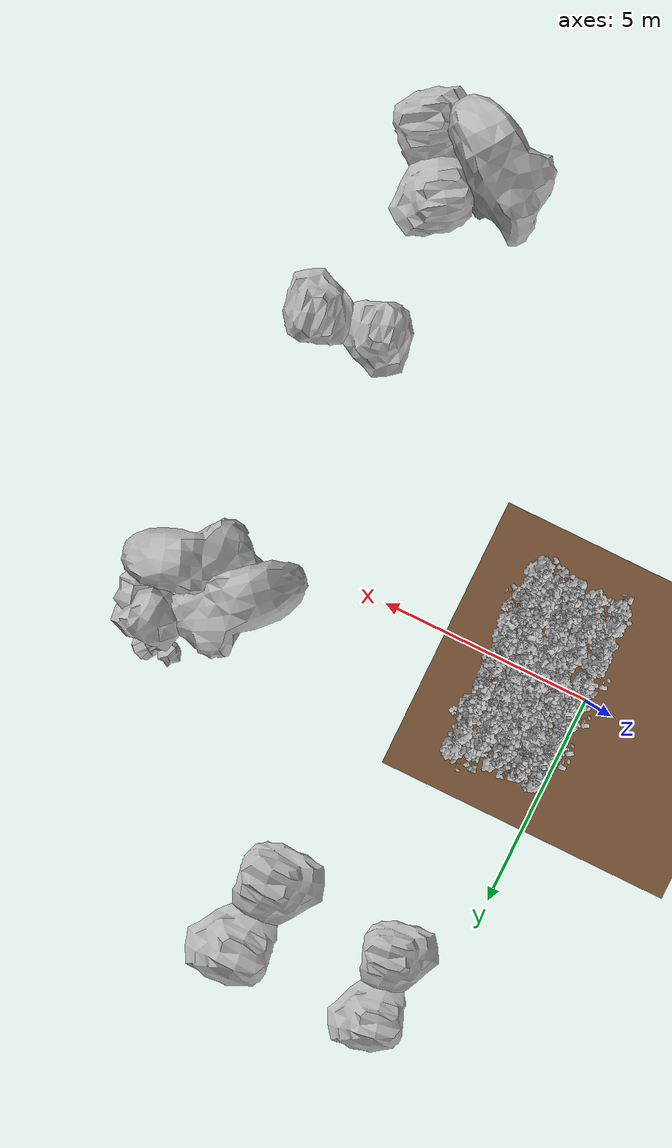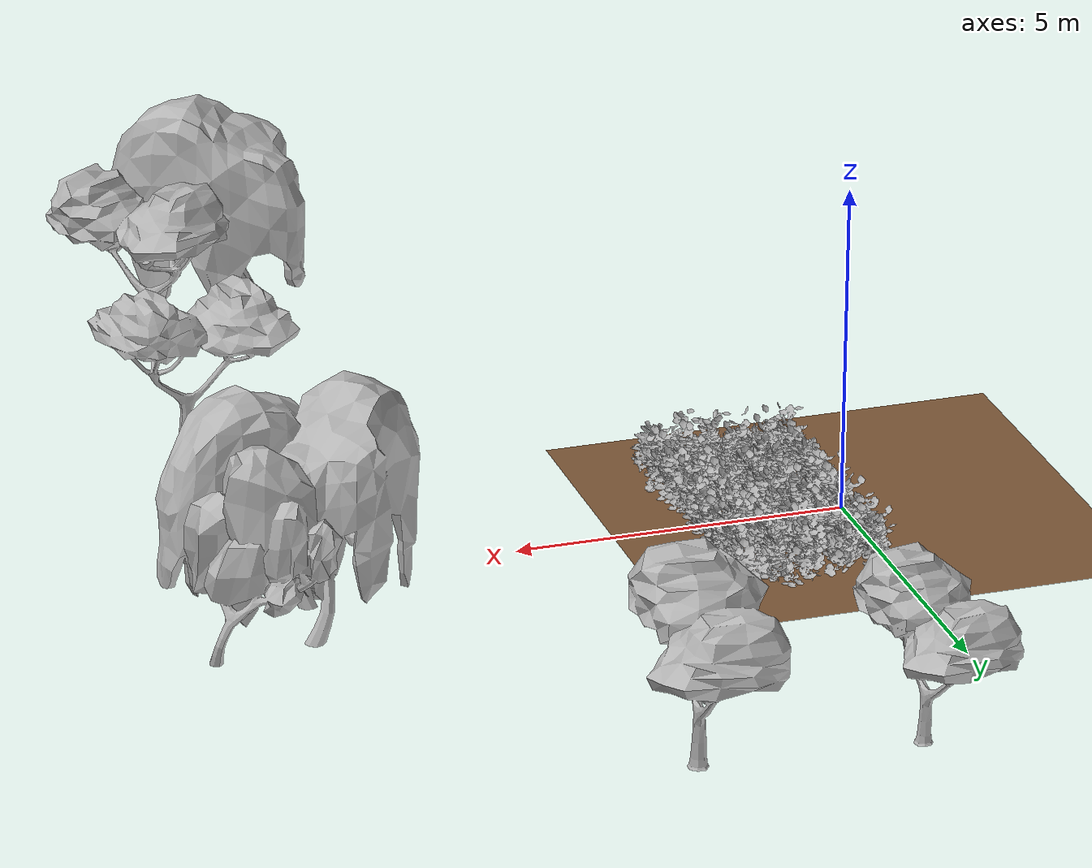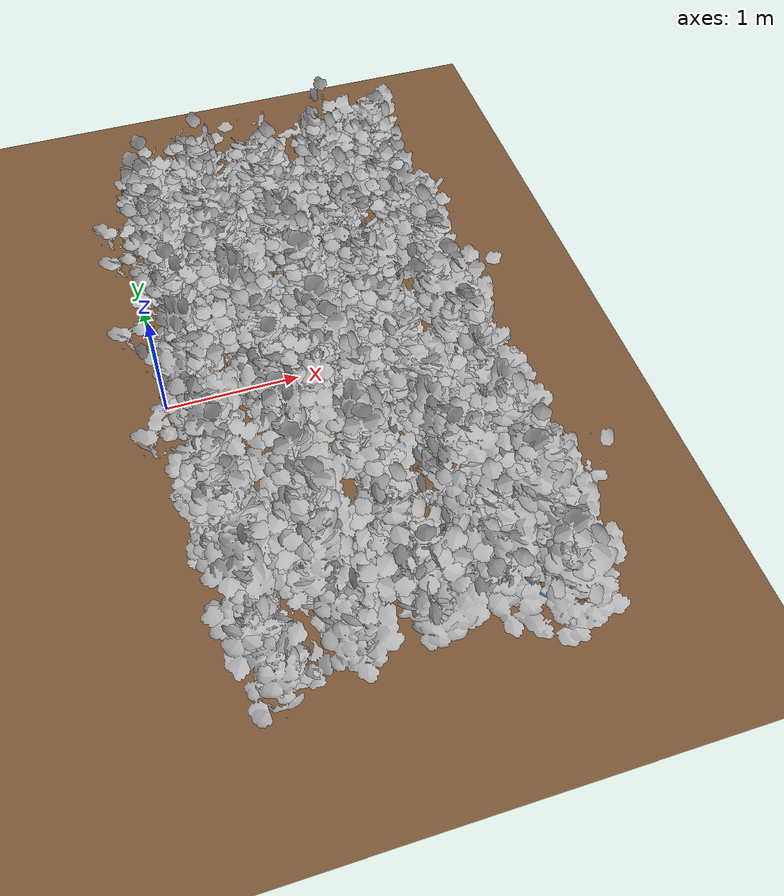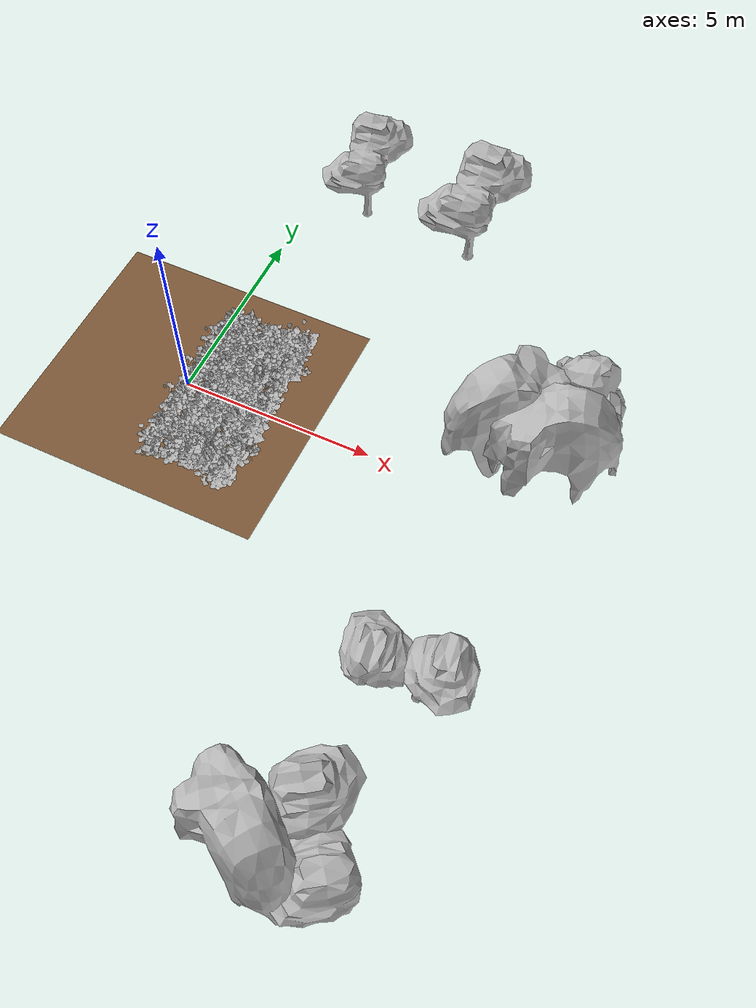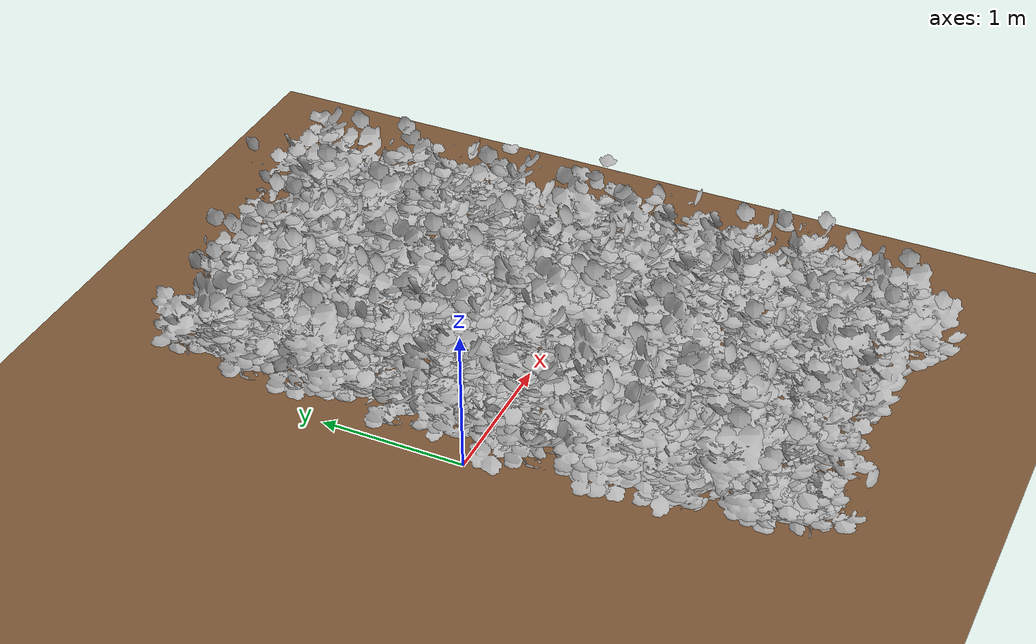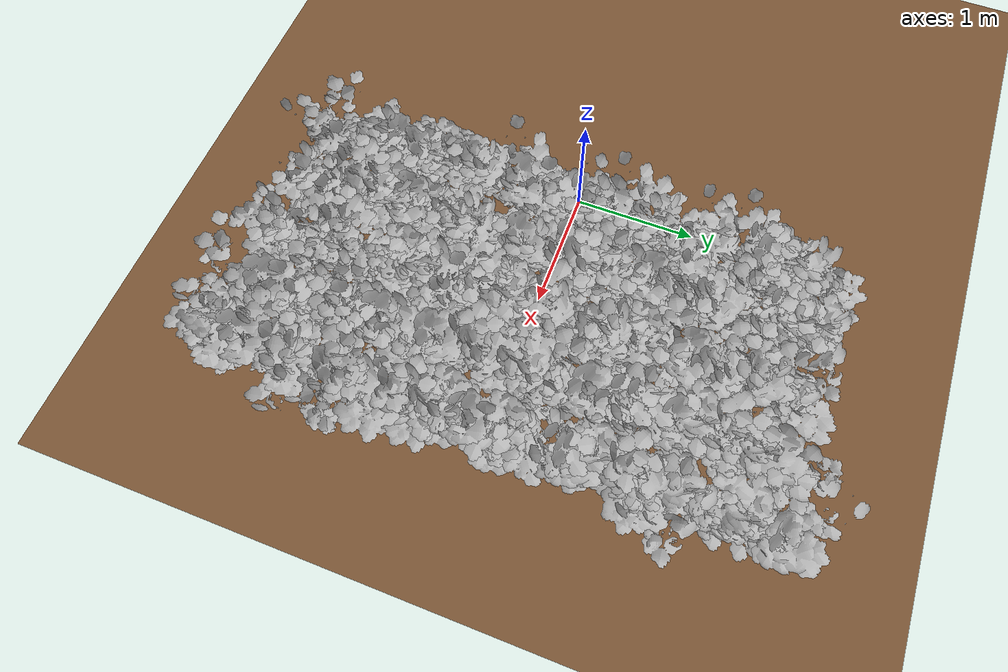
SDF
<sdf version="1.9">
 <world name="soybean_farm">
  <model name="soil_patch">
   <static>true</static>
   <pose>0 0 0.002 0 0 0</pose>
   <link name="link">
    <visual name="visual">
     <geometry><plane><normal>0 0 1</normal><size>7.00 6.50</size></plane></geometry>
     <material>
      <ambient>0.22 0.15 0.09 1</ambient>
      <diffuse>0.50 0.35 0.22 1</diffuse>
      <specular>0.05 0.05 0.05 1</specular>
      <pbr>
       <metal>
        <albedo_map>ground/soil_color_1k.jpg</albedo_map>
        <roughness>0.95</roughness>
        <metalness>0.0</metalness>
       </metal>
      </pbr>
     </material>
    </visual>
   </link>
  </model>
  <model name="tree_00">
   <static>true</static>
   <pose>1.51 7.22 0 1.5708 0 3.29</pose>
   <link name="base_link">
    <visual name="visual">
     <geometry>
      <mesh><uri>models/tree_common/meshes/tree_common.obj</uri><scale>1.06 1.06 1.06</scale></mesh>
     </geometry>
    </visual>
   </link>
  </model>
  <model name="tree_02">
   <static>true</static>
   <pose>8.62 -5.05 0 1.5708 0 4.88</pose>
   <link name="base_link">
    <visual name="visual">
     <geometry>
      <mesh><uri>models/tree_common/meshes/tree_common.obj</uri><scale>1.04 1.04 1.04</scale></mesh>
     </geometry>
    </visual>
   </link>
  </model>
  <model name="tree_04">
   <static>true</static>
   <pose>4.64 6.96 0 1.5708 0 3.10</pose>
   <link name="base_link">
    <visual name="visual">
     <geometry>
      <mesh><uri>models/tree_common/meshes/tree_common.obj</uri><scale>1.20 1.20 1.20</scale></mesh>
     </geometry>
    </visual>
   </link>
  </model>
  <model name="tree_05">
   <static>true</static>
   <pose>6.49 -8.97 0 1.5708 0 4.04</pose>
   <link name="base_link">
    <visual name="visual">
     <geometry>
      <mesh><uri>models/tree_willow/meshes/tree_willow.obj</uri><scale>1.29 1.29 1.29</scale></mesh>
     </geometry>
    </visual>
   </link>
  </model>
  <model name="tree_06">
   <static>true</static>
   <pose>9.96 2.10 0 1.5708 0 0.95</pose>
   <link name="base_link">
    <visual name="visual">
     <geometry>
      <mesh><uri>models/tree_birch/meshes/tree_birch.obj</uri><scale>0.93 0.93 0.93</scale></mesh>
     </geometry>
    </visual>
   </link>
  </model>
  <model name="tree_09">
   <static>true</static>
   <pose>8.12 -8.83 0 1.5708 0 0.57</pose>
   <link name="base_link">
    <visual name="visual">
     <geometry>
      <mesh><uri>models/tree_common/meshes/tree_common.obj</uri><scale>1.14 1.14 1.14</scale></mesh>
     </geometry>
    </visual>
   </link>
  </model>
  <model name="tree_10">
   <static>true</static>
   <pose>8.35 0.90 0 1.5708 0 4.98</pose>
   <link name="base_link">
    <visual name="visual">
     <geometry>
      <mesh><uri>models/tree_willow/meshes/tree_willow.obj</uri><scale>1.26 1.26 1.26</scale></mesh>
     </geometry>
    </visual>
   </link>
  </model>
  <model name="tree_14">
   <static>true</static>
   <pose>8.60 1.81 0 1.5708 0 2.29</pose>
   <link name="base_link">
    <visual name="visual">
     <geometry>
      <mesh><uri>models/tree_willow/meshes/tree_willow.obj</uri><scale>1.27 1.27 1.27</scale></mesh>
     </geometry>
    </visual>
   </link>
  </model>
  <model name="soybean_150">
   <static>true</static>
   <pose>0.263 -2.176 0 0 0 4.764</pose>
   <link name="base_link">
    <visual name="visual">
     <geometry><mesh><uri>models/soybean_plant/meshes/soybean_30d.obj</uri></mesh></geometry>
    </visual>
   </link>
  </model>
  <model name="soybean_151">
   <static>true</static>
   <pose>0.259 -2.026 0 0 0 4.982</pose>
   <link name="base_link">
    <visual name="visual">
     <geometry><mesh><uri>models/soybean_plant/meshes/soybean_50d.obj</uri></mesh></geometry>
    </visual>
   </link>
  </model>
  <model name="soybean_152">
   <static>true</static>
   <pose>0.233 -1.863 0 0 0 1.924</pose>
   <link name="base_link">
    <visual name="visual">
     <geometry><mesh><uri>models/soybean_plant/meshes/soybean_30d.obj</uri></mesh></geometry>
    </visual>
   </link>
  </model>
  <model name="soybean_153">
   <static>true</static>
   <pose>0.248 -1.723 0 0 0 2.674</pose>
   <link name="base_link">
    <visual name="visual">
     <geometry><mesh><uri>models/soybean_plant/meshes/soybean_40d.obj</uri></mesh></geometry>
    </visual>
   </link>
  </model>
  <model name="soybean_154">
   <static>true</static>
   <pose>0.240 -1.563 0 0 0 1.702</pose>
   <link name="base_link">
    <visual name="visual">
     <geometry><mesh><uri>models/soybean_plant/meshes/soybean_50d.obj</uri></mesh></geometry>
    </visual>
   </link>
  </model>
  <model name="soybean_155">
   <static>true</static>
   <pose>0.227 -1.443 0 0 0 0.751</pose>
   <link name="base_link">
    <visual name="visual">
     <geometry><mesh><uri>models/soybean_plant/meshes/soybean_40d.obj</uri></mesh></geometry>
    </visual>
   </link>
  </model>
  <model name="soybean_156">
   <static>true</static>
   <pose>0.266 -1.294 0 0 0 1.360</pose>
   <link name="base_link">
    <visual name="visual">
     <geometry><mesh><uri>models/soybean_plant/meshes/soybean_40d.obj</uri></mesh></geometry>
    </visual>
   </link>
  </model>
  <model name="soybean_157">
   <static>true</static>
   <pose>0.263 -1.096 0 0 0 3.296</pose>
   <link name="base_link">
    <visual name="visual">
     <geometry><mesh><uri>models/soybean_plant/meshes/soybean_40d.obj</uri></mesh></geometry>
    </visual>
   </link>
  </model>
  <model name="soybean_158">
   <static>true</static>
   <pose>0.226 -0.993 0 0 0 1.429</pose>
   <link name="base_link">
    <visual name="visual">
     <geometry><mesh><uri>models/soybean_plant/meshes/soybean_40d.obj</uri></mesh></geometry>
    </visual>
   </link>
  </model>
  <model name="soybean_159">
   <static>true</static>
   <pose>0.221 -0.823 0 0 0 1.724</pose>
   <link name="base_link">
    <visual name="visual">
     <geometry><mesh><uri>models/soybean_plant/meshes/soybean_40d.obj</uri></mesh></geometry>
    </visual>
   </link>
  </model>
  <model name="soybean_160">
   <static>true</static>
   <pose>0.253 -0.663 0 0 0 0.793</pose>
   <link name="base_link">
    <visual name="visual">
     <geometry><mesh><uri>models/soybean_plant/meshes/soybean_50d.obj</uri></mesh></geometry>
    </visual>
   </link>
  </model>
  <model name="soybean_161">
   <static>true</static>
   <pose>0.249 -0.503 0 0 0 3.607</pose>
   <link name="base_link">
    <visual name="visual">
     <geometry><mesh><uri>models/soybean_plant/meshes/soybean_50d.obj</uri></mesh></geometry>
    </visual>
   </link>
  </model>
  <model name="soybean_162">
   <static>true</static>
   <pose>0.246 -0.394 0 0 0 0.323</pose>
   <link name="base_link">
    <visual name="visual">
     <geometry><mesh><uri>models/soybean_plant/meshes/soybean_40d.obj</uri></mesh></geometry>
    </visual>
   </link>
  </model>
  <model name="soybean_163">
   <static>true</static>
   <pose>0.249 -0.206 0 0 0 2.518</pose>
   <link name="base_link">
    <visual name="visual">
     <geometry><mesh><uri>models/soybean_plant/meshes/soybean_50d.obj</uri></mesh></geometry>
    </visual>
   </link>
  </model>
  <model name="soybean_164">
   <static>true</static>
   <pose>0.258 -0.102 0 0 0 0.937</pose>
   <link name="base_link">
    <visual name="visual">
     <geometry><mesh><uri>models/soybean_plant/meshes/soybean_30d.obj</uri></mesh></geometry>
    </visual>
   </link>
  </model>
  <model name="soybean_165">
   <static>true</static>
   <pose>0.238 0.105 0 0 0 0.744</pose>
   <link name="base_link">
    <visual name="visual">
     <geometry><mesh><uri>models/soybean_plant/meshes/soybean_40d.obj</uri></mesh></geometry>
    </visual>
   </link>
  </model>
  <model name="soybean_166">
   <static>true</static>
   <pose>0.256 0.242 0 0 0 1.418</pose>
   <link name="base_link">
    <visual name="visual">
     <geometry><mesh><uri>models/soybean_plant/meshes/soybean_50d.obj</uri></mesh></geometry>
    </visual>
   </link>
  </model>
  <model name="soybean_167">
   <static>true</static>
   <pose>0.247 0.372 0 0 0 5.405</pose>
   <link name="base_link">
    <visual name="visual">
     <geometry><mesh><uri>models/soybean_plant/meshes/soybean_40d.obj</uri></mesh></geometry>
    </visual>
   </link>
  </model>
  <model name="soybean_168">
   <static>true</static>
   <pose>0.238 0.532 0 0 0 3.830</pose>
   <link name="base_link">
    <visual name="visual">
     <geometry><mesh><uri>models/soybean_plant/meshes/soybean_50d.obj</uri></mesh></geometry>
    </visual>
   </link>
  </model>
  <model name="soybean_169">
   <static>true</static>
   <pose>0.277 0.657 0 0 0 1.326</pose>
   <link name="base_link">
    <visual name="visual">
     <geometry><mesh><uri>models/soybean_plant/meshes/soybean_50d.obj</uri></mesh></geometry>
    </visual>
   </link>
  </model>
  <model name="soybean_170">
   <static>true</static>
   <pose>0.229 0.805 0 0 0 0.472</pose>
   <link name="base_link">
    <visual name="visual">
     <geometry><mesh><uri>models/soybean_plant/meshes/soybean_50d.obj</uri></mesh></geometry>
    </visual>
   </link>
  </model>
  <model name="soybean_171">
   <static>true</static>
   <pose>0.247 0.981 0 0 0 1.830</pose>
   <link name="base_link">
    <visual name="visual">
     <geometry><mesh><uri>models/soybean_plant/meshes/soybean_30d.obj</uri></mesh></geometry>
    </visual>
   </link>
  </model>
  <model name="soybean_172">
   <static>true</static>
   <pose>0.262 1.137 0 0 0 2.853</pose>
   <link name="base_link">
    <visual name="visual">
     <geometry><mesh><uri>models/soybean_plant/meshes/soybean_40d.obj</uri></mesh></geometry>
    </visual>
   </link>
  </model>
  <model name="soybean_173">
   <static>true</static>
   <pose>0.275 1.292 0 0 0 3.927</pose>
   <link name="base_link">
    <visual name="visual">
     <geometry><mesh><uri>models/soybean_plant/meshes/soybean_50d.obj</uri></mesh></geometry>
    </visual>
   </link>
  </model>
  <model name="soybean_174">
   <static>true</static>
   <pose>0.276 1.421 0 0 0 3.422</pose>
   <link name="base_link">
    <visual name="visual">
     <geometry><mesh><uri>models/soybean_plant/meshes/soybean_50d.obj</uri></mesh></geometry>
    </visual>
   </link>
  </model>
  <model name="soybean_175">
   <static>true</static>
   <pose>0.275 1.595 0 0 0 0.449</pose>
   <link name="base_link">
    <visual name="visual">
     <geometry><mesh><uri>models/soybean_plant/meshes/soybean_40d.obj</uri></mesh></geometry>
    </visual>
   </link>
  </model>
  <model name="soybean_176">
   <static>true</static>
   <pose>0.238 1.740 0 0 0 3.576</pose>
   <link name="base_link">
    <visual name="visual">
     <geometry><mesh><uri>models/soybean_plant/meshes/soybean_40d.obj</uri></mesh></geometry>
    </visual>
   </link>
  </model>
  <model name="soybean_177">
   <static>true</static>
   <pose>0.227 1.886 0 0 0 4.397</pose>
   <link name="base_link">
    <visual name="visual">
     <geometry><mesh><uri>models/soybean_plant/meshes/soybean_40d.obj</uri></mesh></geometry>
    </visual>
   </link>
  </model>
  <model name="soybean_178">
   <static>true</static>
   <pose>0.250 2.025 0 0 0 0.505</pose>
   <link name="base_link">
    <visual name="visual">
     <geometry><mesh><uri>models/soybean_plant/meshes/soybean_50d.obj</uri></mesh></geometry>
    </visual>
   </link>
  </model>
  <model name="soybean_179">
   <static>true</static>
   <pose>0.246 2.164 0 0 0 1.573</pose>
   <link name="base_link">
    <visual name="visual">
     <geometry><mesh><uri>models/soybean_plant/meshes/soybean_30d.obj</uri></mesh></geometry>
    </visual>
   </link>
  </model>
  <model name="soybean_180">
   <static>true</static>
   <pose>0.778 -2.155 0 0 0 3.614</pose>
   <link name="base_link">
    <visual name="visual">
     <geometry><mesh><uri>models/soybean_plant/meshes/soybean_30d.obj</uri></mesh></geometry>
    </visual>
   </link>
  </model>
  <model name="soybean_181">
   <static>true</static>
   <pose>0.780 -2.015 0 0 0 1.693</pose>
   <link name="base_link">
    <visual name="visual">
     <geometry><mesh><uri>models/soybean_plant/meshes/soybean_50d.obj</uri></mesh></geometry>
    </visual>
   </link>
  </model>
  <model name="soybean_182">
   <static>true</static>
   <pose>0.765 -1.877 0 0 0 4.094</pose>
   <link name="base_link">
    <visual name="visual">
     <geometry><mesh><uri>models/soybean_plant/meshes/soybean_30d.obj</uri></mesh></geometry>
    </visual>
   </link>
  </model>
  <model name="soybean_183">
   <static>true</static>
   <pose>0.731 -1.720 0 0 0 3.988</pose>
   <link name="base_link">
    <visual name="visual">
     <geometry><mesh><uri>models/soybean_plant/meshes/soybean_50d.obj</uri></mesh></geometry>
    </visual>
   </link>
  </model>
  <model name="soybean_184">
   <static>true</static>
   <pose>0.725 -1.584 0 0 0 2.094</pose>
   <link name="base_link">
    <visual name="visual">
     <geometry><mesh><uri>models/soybean_plant/meshes/soybean_40d.obj</uri></mesh></geometry>
    </visual>
   </link>
  </model>
  <model name="soybean_185">
   <static>true</static>
   <pose>0.771 -1.435 0 0 0 4.358</pose>
   <link name="base_link">
    <visual name="visual">
     <geometry><mesh><uri>models/soybean_plant/meshes/soybean_50d.obj</uri></mesh></geometry>
    </visual>
   </link>
  </model>
  <model name="soybean_186">
   <static>true</static>
   <pose>0.777 -1.256 0 0 0 3.456</pose>
   <link name="base_link">
    <visual name="visual">
     <geometry><mesh><uri>models/soybean_plant/meshes/soybean_40d.obj</uri></mesh></geometry>
    </visual>
   </link>
  </model>
  <model name="soybean_187">
   <static>true</static>
   <pose>0.739 -1.136 0 0 0 6.096</pose>
   <link name="base_link">
    <visual name="visual">
     <geometry><mesh><uri>models/soybean_plant/meshes/soybean_40d.obj</uri></mesh></geometry>
    </visual>
   </link>
  </model>
  <model name="soybean_188">
   <static>true</static>
   <pose>0.751 -0.946 0 0 0 4.132</pose>
   <link name="base_link">
    <visual name="visual">
     <geometry><mesh><uri>models/soybean_plant/meshes/soybean_40d.obj</uri></mesh></geometry>
    </visual>
   </link>
  </model>
  <model name="soybean_189">
   <static>true</static>
   <pose>0.745 -0.844 0 0 0 2.273</pose>
   <link name="base_link">
    <visual name="visual">
     <geometry><mesh><uri>models/soybean_plant/meshes/soybean_40d.obj</uri></mesh></geometry>
    </visual>
   </link>
  </model>
  <model name="soybean_190">
   <static>true</static>
   <pose>0.758 -0.659 0 0 0 1.279</pose>
   <link name="base_link">
    <visual name="visual">
     <geometry><mesh><uri>models/soybean_plant/meshes/soybean_50d.obj</uri></mesh></geometry>
    </visual>
   </link>
  </model>
  <model name="soybean_191">
   <static>true</static>
   <pose>0.776 -0.529 0 0 0 4.387</pose>
   <link name="base_link">
    <visual name="visual">
     <geometry><mesh><uri>models/soybean_plant/meshes/soybean_40d.obj</uri></mesh></geometry>
    </visual>
   </link>
  </model>
  <model name="soybean_192">
   <static>true</static>
   <pose>0.778 -0.368 0 0 0 1.504</pose>
   <link name="base_link">
    <visual name="visual">
     <geometry><mesh><uri>models/soybean_plant/meshes/soybean_30d.obj</uri></mesh></geometry>
    </visual>
   </link>
  </model>
  <model name="soybean_193">
   <static>true</static>
   <pose>0.753 -0.222 0 0 0 0.586</pose>
   <link name="base_link">
    <visual name="visual">
     <geometry><mesh><uri>models/soybean_plant/meshes/soybean_40d.obj</uri></mesh></geometry>
    </visual>
   </link>
  </model>
  <model name="soybean_194">
   <static>true</static>
   <pose>0.775 -0.077 0 0 0 0.738</pose>
   <link name="base_link">
    <visual name="visual">
     <geometry><mesh><uri>models/soybean_plant/meshes/soybean_50d.obj</uri></mesh></geometry>
    </visual>
   </link>
  </model>
  <model name="soybean_195">
   <static>true</static>
   <pose>0.750 0.088 0 0 0 3.197</pose>
   <link name="base_link">
    <visual name="visual">
     <geometry><mesh><uri>models/soybean_plant/meshes/soybean_50d.obj</uri></mesh></geometry>
    </visual>
   </link>
  </model>
  <model name="soybean_196">
   <static>true</static>
   <pose>0.770 0.254 0 0 0 1.531</pose>
   <link name="base_link">
    <visual name="visual">
     <geometry><mesh><uri>models/soybean_plant/meshes/soybean_40d.obj</uri></mesh></geometry>
    </visual>
   </link>
  </model>
  <model name="soybean_197">
   <static>true</static>
   <pose>0.743 0.400 0 0 0 3.193</pose>
   <link name="base_link">
    <visual name="visual">
     <geometry><mesh><uri>models/soybean_plant/meshes/soybean_40d.obj</uri></mesh></geometry>
    </visual>
   </link>
  </model>
  <model name="soybean_198">
   <static>true</static>
   <pose>0.772 0.512 0 0 0 4.964</pose>
   <link name="base_link">
    <visual name="visual">
     <geometry><mesh><uri>models/soybean_plant/meshes/soybean_50d.obj</uri></mesh></geometry>
    </visual>
   </link>
  </model>
  <model name="soybean_199">
   <static>true</static>
   <pose>0.776 0.675 0 0 0 5.156</pose>
   <link name="base_link">
    <visual name="visual">
     <geometry><mesh><uri>models/soybean_plant/meshes/soybean_40d.obj</uri></mesh></geometry>
    </visual>
   </link>
  </model>
  <model name="soybean_200">
   <static>true</static>
   <pose>0.738 0.830 0 0 0 6.276</pose>
   <link name="base_link">
    <visual name="visual">
     <geometry><mesh><uri>models/soybean_plant/meshes/soybean_40d.obj</uri></mesh></geometry>
    </visual>
   </link>
  </model>
  <model name="soybean_201">
   <static>true</static>
   <pose>0.729 0.977 0 0 0 2.168</pose>
   <link name="base_link">
    <visual name="visual">
     <geometry><mesh><uri>models/soybean_plant/meshes/soybean_40d.obj</uri></mesh></geometry>
    </visual>
   </link>
  </model>
  <model name="soybean_202">
   <static>true</static>
   <pose>0.753 1.122 0 0 0 2.022</pose>
   <link name="base_link">
    <visual name="visual">
     <geometry><mesh><uri>models/soybean_plant/meshes/soybean_40d.obj</uri></mesh></geometry>
    </visual>
   </link>
  </model>
  <model name="soybean_203">
   <static>true</static>
   <pose>0.762 1.279 0 0 0 1.468</pose>
   <link name="base_link">
    <visual name="visual">
     <geometry><mesh><uri>models/soybean_plant/meshes/soybean_40d.obj</uri></mesh></geometry>
    </visual>
   </link>
  </model>
  <model name="soybean_204">
   <static>true</static>
   <pose>0.723 1.440 0 0 0 4.431</pose>
   <link name="base_link">
    <visual name="visual">
     <geometry><mesh><uri>models/soybean_plant/meshes/soybean_50d.obj</uri></mesh></geometry>
    </visual>
   </link>
  </model>
  <model name="soybean_205">
   <static>true</static>
   <pose>0.743 1.585 0 0 0 5.157</pose>
   <link name="base_link">
    <visual name="visual">
     <geometry><mesh><uri>models/soybean_plant/meshes/soybean_50d.obj</uri></mesh></geometry>
    </visual>
   </link>
  </model>
  <model name="soybean_206">
   <static>true</static>
   <pose>0.750 1.697 0 0 0 3.156</pose>
   <link name="base_link">
    <visual name="visual">
     <geometry><mesh><uri>models/soybean_plant/meshes/soybean_50d.obj</uri></mesh></geometry>
    </visual>
   </link>
  </model>
  <model name="soybean_207">
   <static>true</static>
   <pose>0.772 1.897 0 0 0 2.767</pose>
   <link name="base_link">
    <visual name="visual">
     <geometry><mesh><uri>models/soybean_plant/meshes/soybean_40d.obj</uri></mesh></geometry>
    </visual>
   </link>
  </model>
  <model name="soybean_208">
   <static>true</static>
   <pose>0.747 2.038 0 0 0 2.576</pose>
   <link name="base_link">
    <visual name="visual">
     <geometry><mesh><uri>models/soybean_plant/meshes/soybean_40d.obj</uri></mesh></geometry>
    </visual>
   </link>
  </model>
  <model name="soybean_209">
   <static>true</static>
   <pose>0.729 2.173 0 0 0 6.090</pose>
   <link name="base_link">
    <visual name="visual">
     <geometry><mesh><uri>models/soybean_plant/meshes/soybean_50d.obj</uri></mesh></geometry>
    </visual>
   </link>
  </model>
  <model name="soybean_210">
   <static>true</static>
   <pose>1.262 -2.166 0 0 0 5.352</pose>
   <link name="base_link">
    <visual name="visual">
     <geometry><mesh><uri>models/soybean_plant/meshes/soybean_40d.obj</uri></mesh></geometry>
    </visual>
   </link>
  </model>
  <model name="soybean_211">
   <static>true</static>
   <pose>1.272 -2.032 0 0 0 1.990</pose>
   <link name="base_link">
    <visual name="visual">
     <geometry><mesh><uri>models/soybean_plant/meshes/soybean_50d.obj</uri></mesh></geometry>
    </visual>
   </link>
  </model>
  <model name="soybean_212">
   <static>true</static>
   <pose>1.266 -1.853 0 0 0 0.226</pose>
   <link name="base_link">
    <visual name="visual">
     <geometry><mesh><uri>models/soybean_plant/meshes/soybean_50d.obj</uri></mesh></geometry>
    </visual>
   </link>
  </model>
  <model name="soybean_213">
   <static>true</static>
   <pose>1.258 -1.700 0 0 0 6.267</pose>
   <link name="base_link">
    <visual name="visual">
     <geometry><mesh><uri>models/soybean_plant/meshes/soybean_30d.obj</uri></mesh></geometry>
    </visual>
   </link>
  </model>
  <model name="soybean_214">
   <static>true</static>
   <pose>1.246 -1.599 0 0 0 3.982</pose>
   <link name="base_link">
    <visual name="visual">
     <geometry><mesh><uri>models/soybean_plant/meshes/soybean_50d.obj</uri></mesh></geometry>
    </visual>
   </link>
  </model>
  <model name="soybean_215">
   <static>true</static>
   <pose>1.247 -1.413 0 0 0 5.676</pose>
   <link name="base_link">
    <visual name="visual">
     <geometry><mesh><uri>models/soybean_plant/meshes/soybean_50d.obj</uri></mesh></geometry>
    </visual>
   </link>
  </model>
  <model name="soybean_216">
   <static>true</static>
   <pose>1.268 -1.287 0 0 0 2.355</pose>
   <link name="base_link">
    <visual name="visual">
     <geometry><mesh><uri>models/soybean_plant/meshes/soybean_30d.obj</uri></mesh></geometry>
    </visual>
   </link>
  </model>
  <model name="soybean_217">
   <static>true</static>
   <pose>1.252 -1.121 0 0 0 4.980</pose>
   <link name="base_link">
    <visual name="visual">
     <geometry><mesh><uri>models/soybean_plant/meshes/soybean_30d.obj</uri></mesh></geometry>
    </visual>
   </link>
  </model>
  <model name="soybean_218">
   <static>true</static>
   <pose>1.225 -0.953 0 0 0 3.894</pose>
   <link name="base_link">
    <visual name="visual">
     <geometry><mesh><uri>models/soybean_plant/meshes/soybean_40d.obj</uri></mesh></geometry>
    </visual>
   </link>
  </model>
  <model name="soybean_219">
   <static>true</static>
   <pose>1.275 -0.846 0 0 0 2.897</pose>
   <link name="base_link">
    <visual name="visual">
     <geometry><mesh><uri>models/soybean_plant/meshes/soybean_40d.obj</uri></mesh></geometry>
    </visual>
   </link>
  </model>
  <model name="soybean_220">
   <static>true</static>
   <pose>1.235 -0.704 0 0 0 5.056</pose>
   <link name="base_link">
    <visual name="visual">
     <geometry><mesh><uri>models/soybean_plant/meshes/soybean_40d.obj</uri></mesh></geometry>
    </visual>
   </link>
  </model>
  <model name="soybean_221">
   <static>true</static>
   <pose>1.261 -0.546 0 0 0 2.775</pose>
   <link name="base_link">
    <visual name="visual">
     <geometry><mesh><uri>models/soybean_plant/meshes/soybean_50d.obj</uri></mesh></geometry>
    </visual>
   </link>
  </model>
  <model name="soybean_222">
   <static>true</static>
   <pose>1.255 -0.367 0 0 0 2.666</pose>
   <link name="base_link">
    <visual name="visual">
     <geometry><mesh><uri>models/soybean_plant/meshes/soybean_40d.obj</uri></mesh></geometry>
    </visual>
   </link>
  </model>
  <model name="soybean_223">
   <static>true</static>
   <pose>1.271 -0.243 0 0 0 2.417</pose>
   <link name="base_link">
    <visual name="visual">
     <geometry><mesh><uri>models/soybean_plant/meshes/soybean_40d.obj</uri></mesh></geometry>
    </visual>
   </link>
  </model>
  <model name="soybean_224">
   <static>true</static>
   <pose>1.234 -0.071 0 0 0 3.612</pose>
   <link name="base_link">
    <visual name="visual">
     <geometry><mesh><uri>models/soybean_plant/meshes/soybean_40d.obj</uri></mesh></geometry>
    </visual>
   </link>
  </model>
  <model name="soybean_225">
   <static>true</static>
   <pose>1.238 0.104 0 0 0 4.136</pose>
   <link name="base_link">
    <visual name="visual">
     <geometry><mesh><uri>models/soybean_plant/meshes/soybean_50d.obj</uri></mesh></geometry>
    </visual>
   </link>
  </model>
  <model name="soybean_226">
   <static>true</static>
   <pose>1.254 0.236 0 0 0 4.679</pose>
   <link name="base_link">
    <visual name="visual">
     <geometry><mesh><uri>models/soybean_plant/meshes/soybean_40d.obj</uri></mesh></geometry>
    </visual>
   </link>
  </model>
  <model name="soybean_227">
   <static>true</static>
   <pose>1.256 0.375 0 0 0 5.681</pose>
   <link name="base_link">
    <visual name="visual">
     <geometry><mesh><uri>models/soybean_plant/meshes/soybean_30d.obj</uri></mesh></geometry>
    </visual>
   </link>
  </model>
  <model name="soybean_228">
   <static>true</static>
   <pose>1.268 0.531 0 0 0 2.214</pose>
   <link name="base_link">
    <visual name="visual">
     <geometry><mesh><uri>models/soybean_plant/meshes/soybean_40d.obj</uri></mesh></geometry>
    </visual>
   </link>
  </model>
  <model name="soybean_229">
   <static>true</static>
   <pose>1.257 0.686 0 0 0 4.530</pose>
   <link name="base_link">
    <visual name="visual">
     <geometry><mesh><uri>models/soybean_plant/meshes/soybean_40d.obj</uri></mesh></geometry>
    </visual>
   </link>
  </model>
  <model name="soybean_230">
   <static>true</static>
   <pose>1.270 0.833 0 0 0 5.676</pose>
   <link name="base_link">
    <visual name="visual">
     <geometry><mesh><uri>models/soybean_plant/meshes/soybean_50d.obj</uri></mesh></geometry>
    </visual>
   </link>
  </model>
  <model name="soybean_231">
   <static>true</static>
   <pose>1.239 0.971 0 0 0 3.642</pose>
   <link name="base_link">
    <visual name="visual">
     <geometry><mesh><uri>models/soybean_plant/meshes/soybean_40d.obj</uri></mesh></geometry>
    </visual>
   </link>
  </model>
  <model name="soybean_232">
   <static>true</static>
   <pose>1.225 1.113 0 0 0 4.697</pose>
   <link name="base_link">
    <visual name="visual">
     <geometry><mesh><uri>models/soybean_plant/meshes/soybean_50d.obj</uri></mesh></geometry>
    </visual>
   </link>
  </model>
  <model name="soybean_233">
   <static>true</static>
   <pose>1.228 1.277 0 0 0 6.104</pose>
   <link name="base_link">
    <visual name="visual">
     <geometry><mesh><uri>models/soybean_plant/meshes/soybean_40d.obj</uri></mesh></geometry>
    </visual>
   </link>
  </model>
  <model name="soybean_234">
   <static>true</static>
   <pose>1.275 1.445 0 0 0 1.615</pose>
   <link name="base_link">
    <visual name="visual">
     <geometry><mesh><uri>models/soybean_plant/meshes/soybean_40d.obj</uri></mesh></geometry>
    </visual>
   </link>
  </model>
  <model name="soybean_235">
   <static>true</static>
   <pose>1.249 1.593 0 0 0 4.691</pose>
   <link name="base_link">
    <visual name="visual">
     <geometry><mesh><uri>models/soybean_plant/meshes/soybean_50d.obj</uri></mesh></geometry>
    </visual>
   </link>
  </model>
  <model name="soybean_236">
   <static>true</static>
   <pose>1.227 1.753 0 0 0 0.884</pose>
   <link name="base_link">
    <visual name="visual">
     <geometry><mesh><uri>models/soybean_plant/meshes/soybean_40d.obj</uri></mesh></geometry>
    </visual>
   </link>
  </model>
  <model name="soybean_237">
   <static>true</static>
   <pose>1.272 1.888 0 0 0 6.157</pose>
   <link name="base_link">
    <visual name="visual">
     <geometry><mesh><uri>models/soybean_plant/meshes/soybean_50d.obj</uri></mesh></geometry>
    </visual>
   </link>
  </model>
  <model name="soybean_238">
   <static>true</static>
   <pose>1.268 2.017 0 0 0 4.968</pose>
   <link name="base_link">
    <visual name="visual">
     <geometry><mesh><uri>models/soybean_plant/meshes/soybean_50d.obj</uri></mesh></geometry>
    </visual>
   </link>
  </model>
  <model name="soybean_239">
   <static>true</static>
   <pose>1.252 2.172 0 0 0 4.228</pose>
   <link name="base_link">
    <visual name="visual">
     <geometry><mesh><uri>models/soybean_plant/meshes/soybean_30d.obj</uri></mesh></geometry>
    </visual>
   </link>
  </model>
  <model name="soybean_240">
   <static>true</static>
   <pose>1.755 -2.156 0 0 0 5.908</pose>
   <link name="base_link">
    <visual name="visual">
     <geometry><mesh><uri>models/soybean_plant/meshes/soybean_50d.obj</uri></mesh></geometry>
    </visual>
   </link>
  </model>
  <model name="soybean_241">
   <static>true</static>
   <pose>1.734 -2.053 0 0 0 5.556</pose>
   <link name="base_link">
    <visual name="visual">
     <geometry><mesh><uri>models/soybean_plant/meshes/soybean_30d.obj</uri></mesh></geometry>
    </visual>
   </link>
  </model>
  <model name="soybean_242">
   <static>true</static>
   <pose>1.775 -1.892 0 0 0 0.397</pose>
   <link name="base_link">
    <visual name="visual">
     <geometry><mesh><uri>models/soybean_plant/meshes/soybean_40d.obj</uri></mesh></geometry>
    </visual>
   </link>
  </model>
  <model name="soybean_243">
   <static>true</static>
   <pose>1.775 -1.737 0 0 0 2.565</pose>
   <link name="base_link">
    <visual name="visual">
     <geometry><mesh><uri>models/soybean_plant/meshes/soybean_50d.obj</uri></mesh></geometry>
    </visual>
   </link>
  </model>
  <model name="soybean_244">
   <static>true</static>
   <pose>1.777 -1.587 0 0 0 3.095</pose>
   <link name="base_link">
    <visual name="visual">
     <geometry><mesh><uri>models/soybean_plant/meshes/soybean_30d.obj</uri></mesh></geometry>
    </visual>
   </link>
  </model>
  <model name="soybean_245">
   <static>true</static>
   <pose>1.773 -1.447 0 0 0 2.850</pose>
   <link name="base_link">
    <visual name="visual">
     <geometry><mesh><uri>models/soybean_plant/meshes/soybean_30d.obj</uri></mesh></geometry>
    </visual>
   </link>
  </model>
  <model name="soybean_246">
   <static>true</static>
   <pose>1.765 -1.248 0 0 0 2.633</pose>
   <link name="base_link">
    <visual name="visual">
     <geometry><mesh><uri>models/soybean_plant/meshes/soybean_50d.obj</uri></mesh></geometry>
    </visual>
   </link>
  </model>
  <model name="soybean_247">
   <static>true</static>
   <pose>1.729 -1.130 0 0 0 0.622</pose>
   <link name="base_link">
    <visual name="visual">
     <geometry><mesh><uri>models/soybean_plant/meshes/soybean_50d.obj</uri></mesh></geometry>
    </visual>
   </link>
  </model>
  <model name="soybean_248">
   <static>true</static>
   <pose>1.744 -0.948 0 0 0 0.206</pose>
   <link name="base_link">
    <visual name="visual">
     <geometry><mesh><uri>models/soybean_plant/meshes/soybean_40d.obj</uri></mesh></geometry>
    </visual>
   </link>
  </model>
  <model name="soybean_249">
   <static>true</static>
   <pose>1.747 -0.798 0 0 0 5.375</pose>
   <link name="base_link">
    <visual name="visual">
     <geometry><mesh><uri>models/soybean_plant/meshes/soybean_40d.obj</uri></mesh></geometry>
    </visual>
   </link>
  </model>
  <model name="soybean_250">
   <static>true</static>
   <pose>1.761 -0.672 0 0 0 6.144</pose>
   <link name="base_link">
    <visual name="visual">
     <geometry><mesh><uri>models/soybean_plant/meshes/soybean_30d.obj</uri></mesh></geometry>
    </visual>
   </link>
  </model>
  <model name="soybean_251">
   <static>true</static>
   <pose>1.744 -0.544 0 0 0 0.768</pose>
   <link name="base_link">
    <visual name="visual">
     <geometry><mesh><uri>models/soybean_plant/meshes/soybean_40d.obj</uri></mesh></geometry>
    </visual>
   </link>
  </model>
  <model name="soybean_252">
   <static>true</static>
   <pose>1.747 -0.365 0 0 0 4.032</pose>
   <link name="base_link">
    <visual name="visual">
     <geometry><mesh><uri>models/soybean_plant/meshes/soybean_50d.obj</uri></mesh></geometry>
    </visual>
   </link>
  </model>
  <model name="soybean_253">
   <static>true</static>
   <pose>1.721 -0.208 0 0 0 1.530</pose>
   <link name="base_link">
    <visual name="visual">
     <geometry><mesh><uri>models/soybean_plant/meshes/soybean_40d.obj</uri></mesh></geometry>
    </visual>
   </link>
  </model>
  <model name="soybean_254">
   <static>true</static>
   <pose>1.754 -0.101 0 0 0 4.808</pose>
   <link name="base_link">
    <visual name="visual">
     <geometry><mesh><uri>models/soybean_plant/meshes/soybean_30d.obj</uri></mesh></geometry>
    </visual>
   </link>
  </model>
  <model name="soybean_255">
   <static>true</static>
   <pose>1.733 0.097 0 0 0 2.064</pose>
   <link name="base_link">
    <visual name="visual">
     <geometry><mesh><uri>models/soybean_plant/meshes/soybean_40d.obj</uri></mesh></geometry>
    </visual>
   </link>
  </model>
  <model name="soybean_256">
   <static>true</static>
   <pose>1.774 0.195 0 0 0 5.394</pose>
   <link name="base_link">
    <visual name="visual">
     <geometry><mesh><uri>models/soybean_plant/meshes/soybean_30d.obj</uri></mesh></geometry>
    </visual>
   </link>
  </model>
  <model name="soybean_257">
   <static>true</static>
   <pose>1.728 0.360 0 0 0 1.096</pose>
   <link name="base_link">
    <visual name="visual">
     <geometry><mesh><uri>models/soybean_plant/meshes/soybean_30d.obj</uri></mesh></geometry>
    </visual>
   </link>
  </model>
  <model name="soybean_258">
   <static>true</static>
   <pose>1.722 0.496 0 0 0 4.964</pose>
   <link name="base_link">
    <visual name="visual">
     <geometry><mesh><uri>models/soybean_plant/meshes/soybean_50d.obj</uri></mesh></geometry>
    </visual>
   </link>
  </model>
  <model name="soybean_259">
   <static>true</static>
   <pose>1.739 0.655 0 0 0 0.329</pose>
   <link name="base_link">
    <visual name="visual">
     <geometry><mesh><uri>models/soybean_plant/meshes/soybean_40d.obj</uri></mesh></geometry>
    </visual>
   </link>
  </model>
  <model name="soybean_260">
   <static>true</static>
   <pose>1.752 0.840 0 0 0 2.992</pose>
   <link name="base_link">
    <visual name="visual">
     <geometry><mesh><uri>models/soybean_plant/meshes/soybean_50d.obj</uri></mesh></geometry>
    </visual>
   </link>
  </model>
  <model name="soybean_261">
   <static>true</static>
   <pose>1.751 0.952 0 0 0 3.166</pose>
   <link name="base_link">
    <visual name="visual">
     <geometry><mesh><uri>models/soybean_plant/meshes/soybean_50d.obj</uri></mesh></geometry>
    </visual>
   </link>
  </model>
  <model name="soybean_262">
   <static>true</static>
   <pose>1.723 1.142 0 0 0 5.447</pose>
   <link name="base_link">
    <visual name="visual">
     <geometry><mesh><uri>models/soybean_plant/meshes/soybean_50d.obj</uri></mesh></geometry>
    </visual>
   </link>
  </model>
  <model name="soybean_263">
   <static>true</static>
   <pose>1.747 1.303 0 0 0 0.382</pose>
   <link name="base_link">
    <visual name="visual">
     <geometry><mesh><uri>models/soybean_plant/meshes/soybean_40d.obj</uri></mesh></geometry>
    </visual>
   </link>
  </model>
  <model name="soybean_264">
   <static>true</static>
   <pose>1.744 1.436 0 0 0 3.080</pose>
   <link name="base_link">
    <visual name="visual">
     <geometry><mesh><uri>models/soybean_plant/meshes/soybean_40d.obj</uri></mesh></geometry>
    </visual>
   </link>
  </model>
  <model name="soybean_265">
   <static>true</static>
   <pose>1.724 1.550 0 0 0 3.822</pose>
   <link name="base_link">
    <visual name="visual">
     <geometry><mesh><uri>models/soybean_plant/meshes/soybean_50d.obj</uri></mesh></geometry>
    </visual>
   </link>
  </model>
  <model name="soybean_266">
   <static>true</static>
   <pose>1.737 1.733 0 0 0 3.445</pose>
   <link name="base_link">
    <visual name="visual">
     <geometry><mesh><uri>models/soybean_plant/meshes/soybean_30d.obj</uri></mesh></geometry>
    </visual>
   </link>
  </model>
  <model name="soybean_267">
   <static>true</static>
   <pose>1.780 1.877 0 0 0 2.851</pose>
   <link name="base_link">
    <visual name="visual">
     <geometry><mesh><uri>models/soybean_plant/meshes/soybean_40d.obj</uri></mesh></geometry>
    </visual>
   </link>
  </model>
  <model name="soybean_268">
   <static>true</static>
   <pose>1.726 2.037 0 0 0 5.358</pose>
   <link name="base_link">
    <visual name="visual">
     <geometry><mesh><uri>models/soybean_plant/meshes/soybean_40d.obj</uri></mesh></geometry>
    </visual>
   </link>
  </model>
  <model name="soybean_269">
   <static>true</static>
   <pose>1.766 2.188 0 0 0 1.351</pose>
   <link name="base_link">
    <visual name="visual">
     <geometry><mesh><uri>models/soybean_plant/meshes/soybean_50d.obj</uri></mesh></geometry>
    </visual>
   </link>
  </model>
  <model name="soybean_270">
   <static>true</static>
   <pose>2.234 -2.185 0 0 0 2.849</pose>
   <link name="base_link">
    <visual name="visual">
     <geometry><mesh><uri>models/soybean_plant/meshes/soybean_40d.obj</uri></mesh></geometry>
    </visual>
   </link>
  </model>
  <model name="soybean_271">
   <static>true</static>
   <pose>2.226 -2.029 0 0 0 4.179</pose>
   <link name="base_link">
    <visual name="visual">
     <geometry><mesh><uri>models/soybean_plant/meshes/soybean_40d.obj</uri></mesh></geometry>
    </visual>
   </link>
  </model>
  <model name="soybean_272">
   <static>true</static>
   <pose>2.229 -1.850 0 0 0 0.422</pose>
   <link name="base_link">
    <visual name="visual">
     <geometry><mesh><uri>models/soybean_plant/meshes/soybean_40d.obj</uri></mesh></geometry>
    </visual>
   </link>
  </model>
  <model name="soybean_273">
   <static>true</static>
   <pose>2.226 -1.749 0 0 0 4.642</pose>
   <link name="base_link">
    <visual name="visual">
     <geometry><mesh><uri>models/soybean_plant/meshes/soybean_50d.obj</uri></mesh></geometry>
    </visual>
   </link>
  </model>
  <model name="soybean_274">
   <static>true</static>
   <pose>2.253 -1.570 0 0 0 3.529</pose>
   <link name="base_link">
    <visual name="visual">
     <geometry><mesh><uri>models/soybean_plant/meshes/soybean_50d.obj</uri></mesh></geometry>
    </visual>
   </link>
  </model>
  <model name="soybean_275">
   <static>true</static>
   <pose>2.227 -1.434 0 0 0 4.180</pose>
   <link name="base_link">
    <visual name="visual">
     <geometry><mesh><uri>models/soybean_plant/meshes/soybean_40d.obj</uri></mesh></geometry>
    </visual>
   </link>
  </model>
  <model name="soybean_276">
   <static>true</static>
   <pose>2.272 -1.262 0 0 0 6.085</pose>
   <link name="base_link">
    <visual name="visual">
     <geometry><mesh><uri>models/soybean_plant/meshes/soybean_50d.obj</uri></mesh></geometry>
    </visual>
   </link>
  </model>
  <model name="soybean_277">
   <static>true</static>
   <pose>2.241 -1.120 0 0 0 1.337</pose>
   <link name="base_link">
    <visual name="visual">
     <geometry><mesh><uri>models/soybean_plant/meshes/soybean_40d.obj</uri></mesh></geometry>
    </visual>
   </link>
  </model>
  <model name="soybean_278">
   <static>true</static>
   <pose>2.233 -0.999 0 0 0 5.312</pose>
   <link name="base_link">
    <visual name="visual">
     <geometry><mesh><uri>models/soybean_plant/meshes/soybean_50d.obj</uri></mesh></geometry>
    </visual>
   </link>
  </model>
  <model name="soybean_279">
   <static>true</static>
   <pose>2.266 -0.821 0 0 0 5.072</pose>
   <link name="base_link">
    <visual name="visual">
     <geometry><mesh><uri>models/soybean_plant/meshes/soybean_40d.obj</uri></mesh></geometry>
    </visual>
   </link>
  </model>
  <model name="soybean_280">
   <static>true</static>
   <pose>2.278 -0.656 0 0 0 3.855</pose>
   <link name="base_link">
    <visual name="visual">
     <geometry><mesh><uri>models/soybean_plant/meshes/soybean_50d.obj</uri></mesh></geometry>
    </visual>
   </link>
  </model>
  <model name="soybean_281">
   <static>true</static>
   <pose>2.222 -0.499 0 0 0 5.212</pose>
   <link name="base_link">
    <visual name="visual">
     <geometry><mesh><uri>models/soybean_plant/meshes/soybean_40d.obj</uri></mesh></geometry>
    </visual>
   </link>
  </model>
  <model name="soybean_282">
   <static>true</static>
   <pose>2.231 -0.363 0 0 0 1.941</pose>
   <link name="base_link">
    <visual name="visual">
     <geometry><mesh><uri>models/soybean_plant/meshes/soybean_40d.obj</uri></mesh></geometry>
    </visual>
   </link>
  </model>
  <model name="soybean_283">
   <static>true</static>
   <pose>2.220 -0.203 0 0 0 3.558</pose>
   <link name="base_link">
    <visual name="visual">
     <geometry><mesh><uri>models/soybean_plant/meshes/soybean_40d.obj</uri></mesh></geometry>
    </visual>
   </link>
  </model>
  <model name="soybean_284">
   <static>true</static>
   <pose>2.229 -0.067 0 0 0 0.193</pose>
   <link name="base_link">
    <visual name="visual">
     <geometry><mesh><uri>models/soybean_plant/meshes/soybean_40d.obj</uri></mesh></geometry>
    </visual>
   </link>
  </model>
  <model name="soybean_285">
   <static>true</static>
   <pose>2.233 0.070 0 0 0 2.142</pose>
   <link name="base_link">
    <visual name="visual">
     <geometry><mesh><uri>models/soybean_plant/meshes/soybean_50d.obj</uri></mesh></geometry>
    </visual>
   </link>
  </model>
  <model name="soybean_286">
   <static>true</static>
   <pose>2.263 0.242 0 0 0 3.566</pose>
   <link name="base_link">
    <visual name="visual">
     <geometry><mesh><uri>models/soybean_plant/meshes/soybean_40d.obj</uri></mesh></geometry>
    </visual>
   </link>
  </model>
  <model name="soybean_287">
   <static>true</static>
   <pose>2.223 0.354 0 0 0 3.882</pose>
   <link name="base_link">
    <visual name="visual">
     <geometry><mesh><uri>models/soybean_plant/meshes/soybean_30d.obj</uri></mesh></geometry>
    </visual>
   </link>
  </model>
  <model name="soybean_288">
   <static>true</static>
   <pose>2.236 0.535 0 0 0 3.052</pose>
   <link name="base_link">
    <visual name="visual">
     <geometry><mesh><uri>models/soybean_plant/meshes/soybean_50d.obj</uri></mesh></geometry>
    </visual>
   </link>
  </model>
  <model name="soybean_289">
   <static>true</static>
   <pose>2.236 0.690 0 0 0 0.715</pose>
   <link name="base_link">
    <visual name="visual">
     <geometry><mesh><uri>models/soybean_plant/meshes/soybean_40d.obj</uri></mesh></geometry>
    </visual>
   </link>
  </model>
  <model name="soybean_290">
   <static>true</static>
   <pose>2.237 0.836 0 0 0 3.058</pose>
   <link name="base_link">
    <visual name="visual">
     <geometry><mesh><uri>models/soybean_plant/meshes/soybean_40d.obj</uri></mesh></geometry>
    </visual>
   </link>
  </model>
  <model name="soybean_291">
   <static>true</static>
   <pose>2.223 0.969 0 0 0 3.766</pose>
   <link name="base_link">
    <visual name="visual">
     <geometry><mesh><uri>models/soybean_plant/meshes/soybean_50d.obj</uri></mesh></geometry>
    </visual>
   </link>
  </model>
  <model name="soybean_292">
   <static>true</static>
   <pose>2.238 1.108 0 0 0 0.862</pose>
   <link name="base_link">
    <visual name="visual">
     <geometry><mesh><uri>models/soybean_plant/meshes/soybean_30d.obj</uri></mesh></geometry>
    </visual>
   </link>
  </model>
  <model name="soybean_293">
   <static>true</static>
   <pose>2.240 1.245 0 0 0 4.694</pose>
   <link name="base_link">
    <visual name="visual">
     <geometry><mesh><uri>models/soybean_plant/meshes/soybean_40d.obj</uri></mesh></geometry>
    </visual>
   </link>
  </model>
  <model name="soybean_294">
   <static>true</static>
   <pose>2.243 1.437 0 0 0 3.143</pose>
   <link name="base_link">
    <visual name="visual">
     <geometry><mesh><uri>models/soybean_plant/meshes/soybean_40d.obj</uri></mesh></geometry>
    </visual>
   </link>
  </model>
  <model name="soybean_295">
   <static>true</static>
   <pose>2.268 1.549 0 0 0 5.415</pose>
   <link name="base_link">
    <visual name="visual">
     <geometry><mesh><uri>models/soybean_plant/meshes/soybean_50d.obj</uri></mesh></geometry>
    </visual>
   </link>
  </model>
  <model name="soybean_296">
   <static>true</static>
   <pose>2.221 1.750 0 0 0 5.417</pose>
   <link name="base_link">
    <visual name="visual">
     <geometry><mesh><uri>models/soybean_plant/meshes/soybean_30d.obj</uri></mesh></geometry>
    </visual>
   </link>
  </model>
  <model name="soybean_297">
   <static>true</static>
   <pose>2.254 1.888 0 0 0 2.624</pose>
   <link name="base_link">
    <visual name="visual">
     <geometry><mesh><uri>models/soybean_plant/meshes/soybean_40d.obj</uri></mesh></geometry>
    </visual>
   </link>
  </model>
  <model name="soybean_298">
   <static>true</static>
   <pose>2.221 2.014 0 0 0 5.035</pose>
   <link name="base_link">
    <visual name="visual">
     <geometry><mesh><uri>models/soybean_plant/meshes/soybean_30d.obj</uri></mesh></geometry>
    </visual>
   </link>
  </model>
  <model name="soybean_299">
   <static>true</static>
   <pose>2.270 2.200 0 0 0 0.554</pose>
   <link name="base_link">
    <visual name="visual">
     <geometry><mesh><uri>models/soybean_plant/meshes/soybean_40d.obj</uri></mesh></geometry>
    </visual>
   </link>
  </model>
 </world>
</sdf>
